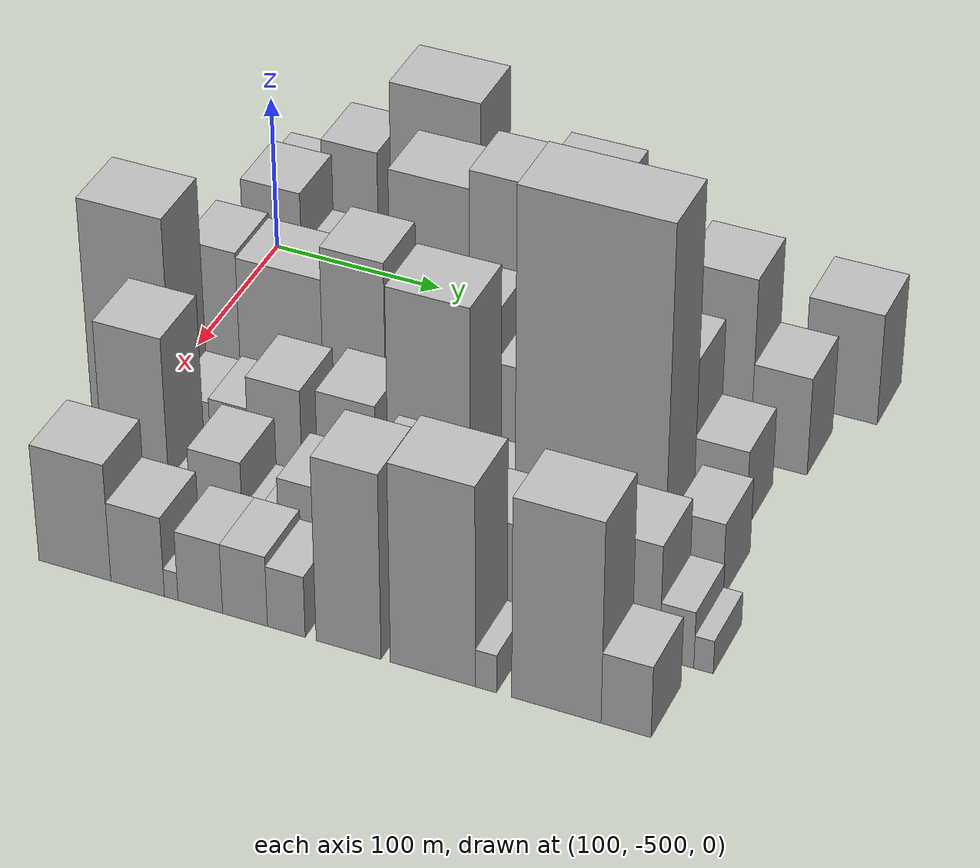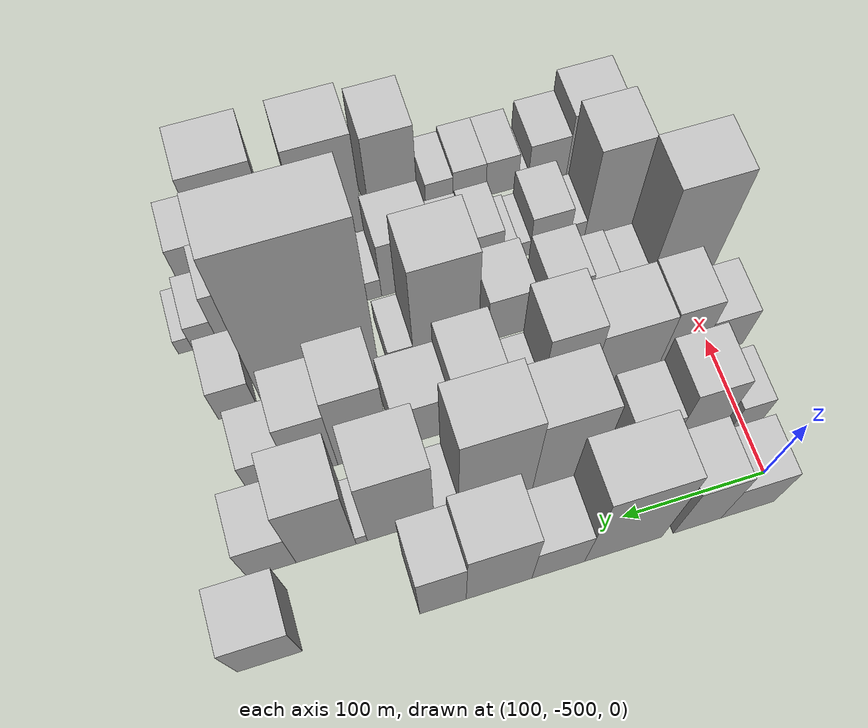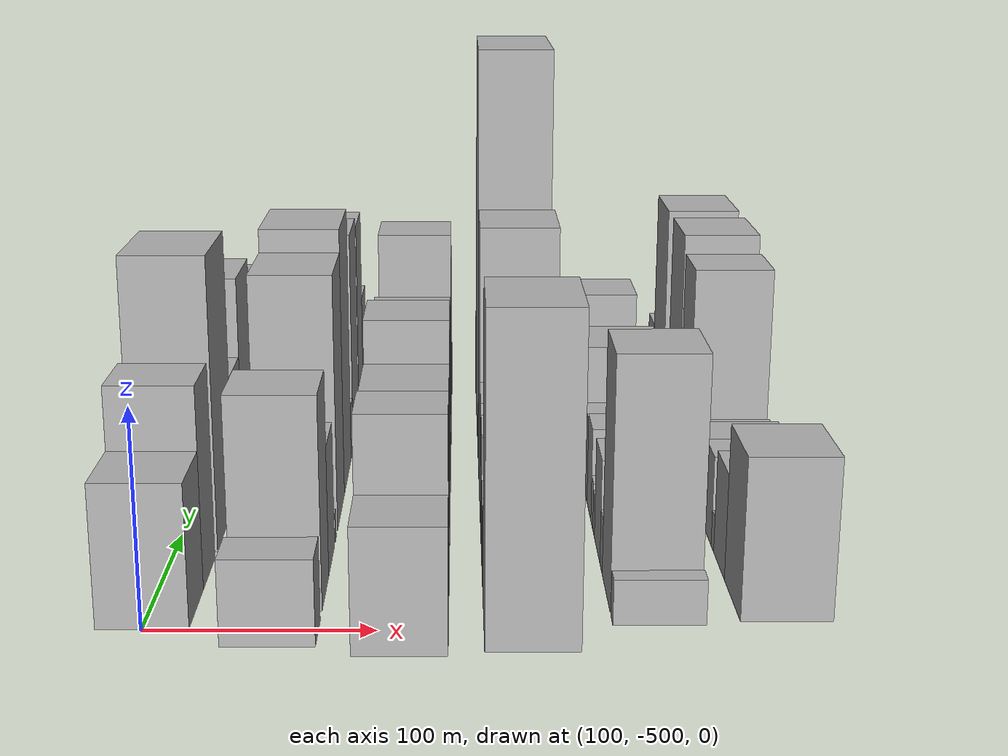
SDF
<sdf version="1.6">
 <world name="default">
  <model name="building_11">
   <static>1</static>
   <pose>100.0000 -479.7981 0 0.000000 0.000000 0.000000</pose>
   <link name="link">
    <pose>0 0 33.00 0 0 0</pose>
    <collision name="collision"><geometry><box><size>40.0000 37.8118 66.0000</size></box></geometry></collision>
    <visual name="visual">
     <cast_shadows>0</cast_shadows>
     <geometry><box><size>40.0000 37.8118 66.0000</size></box></geometry>
     <material>
      <script>
       <uri>model://HANNAS_wall/materials/scripts</uri>
       <uri>model://HANNAS_wall/materials/textures</uri>
       <name>vrc/HANNAS_wall</name>
      </script>
     </material>
    </visual>
   </link>
  </model>
  <model name="building_12">
   <static>1</static>
   <pose>100.0000 -444.1729 0 0.000000 0.000000 0.000000</pose>
   <link name="link">
    <pose>0 0 48.00 0 0 0</pose>
    <collision name="collision"><geometry><box><size>40.0000 33.4387 96.0000</size></box></geometry></collision>
    <visual name="visual">
     <cast_shadows>0</cast_shadows>
     <geometry><box><size>40.0000 33.4387 96.0000</size></box></geometry>
     <material>
      <script>
       <uri>model://HANNAS_wall/materials/scripts</uri>
       <uri>model://HANNAS_wall/materials/textures</uri>
       <name>vrc/HANNAS_wall</name>
      </script>
     </material>
    </visual>
   </link>
  </model>
  <model name="building_13">
   <static>1</static>
   <pose>100.0000 -392.7377 0 0.000000 0.000000 0.000000</pose>
   <link name="link">
    <pose>0 0 72.00 0 0 0</pose>
    <collision name="collision"><geometry><box><size>40.0000 53.4315 144.0000</size></box></geometry></collision>
    <visual name="visual">
     <cast_shadows>0</cast_shadows>
     <geometry><box><size>40.0000 53.4315 144.0000</size></box></geometry>
     <material>
      <script>
       <uri>model://HANNAS_wall/materials/scripts</uri>
       <uri>model://HANNAS_wall/materials/textures</uri>
       <name>vrc/HANNAS_wall</name>
      </script>
     </material>
    </visual>
   </link>
  </model>
  <model name="building_14">
   <static>1</static>
   <pose>100.0000 -348.0701 0 0.000000 0.000000 0.000000</pose>
   <link name="link">
    <pose>0 0 34.50 0 0 0</pose>
    <collision name="collision"><geometry><box><size>40.0000 35.9037 69.0000</size></box></geometry></collision>
    <visual name="visual">
     <cast_shadows>0</cast_shadows>
     <geometry><box><size>40.0000 35.9037 69.0000</size></box></geometry>
     <material>
      <script>
       <uri>model://HANNAS_wall/materials/scripts</uri>
       <uri>model://HANNAS_wall/materials/textures</uri>
       <name>vrc/HANNAS_wall</name>
      </script>
     </material>
    </visual>
   </link>
  </model>
  <model name="building_15">
   <static>1</static>
   <pose>100.0000 -308.0212 0 0.000000 0.000000 0.000000</pose>
   <link name="link">
    <pose>0 0 55.50 0 0 0</pose>
    <collision name="collision"><geometry><box><size>40.0000 44.1941 111.0000</size></box></geometry></collision>
    <visual name="visual">
     <cast_shadows>0</cast_shadows>
     <geometry><box><size>40.0000 44.1941 111.0000</size></box></geometry>
     <material>
      <script>
       <uri>model://HANNAS_wall/materials/scripts</uri>
       <uri>model://HANNAS_wall/materials/textures</uri>
       <name>vrc/HANNAS_wall</name>
      </script>
     </material>
    </visual>
   </link>
  </model>
  <model name="building_16">
   <static>1</static>
   <pose>100.0000 -270.5389 0 0.000000 0.000000 0.000000</pose>
   <link name="link">
    <pose>0 0 46.50 0 0 0</pose>
    <collision name="collision"><geometry><box><size>40.0000 30.7704 93.0000</size></box></geometry></collision>
    <visual name="visual">
     <cast_shadows>0</cast_shadows>
     <geometry><box><size>40.0000 30.7704 93.0000</size></box></geometry>
     <material>
      <script>
       <uri>model://HANNAS_wall/materials/scripts</uri>
       <uri>model://HANNAS_wall/materials/textures</uri>
       <name>vrc/HANNAS_wall</name>
      </script>
     </material>
    </visual>
   </link>
  </model>
  <model name="building_17">
   <static>1</static>
   <pose>100.0000 -157.5000 0 0.000000 0.000000 0.000000</pose>
   <link name="link">
    <pose>0 0 36.00 0 0 0</pose>
    <collision name="collision"><geometry><box><size>40.0000 41.7692 72.0000</size></box></geometry></collision>
    <visual name="visual">
     <cast_shadows>0</cast_shadows>
     <geometry><box><size>40.0000 41.7692 72.0000</size></box></geometry>
     <material>
      <script>
       <uri>model://HANNAS_wall/materials/scripts</uri>
       <uri>model://HANNAS_wall/materials/textures</uri>
       <name>vrc/HANNAS_wall</name>
      </script>
     </material>
    </visual>
   </link>
  </model>
  <model name="building_61">
   <static>1</static>
   <pose>155.0000 -502.9721 0 0.000000 0.000000 0.000000</pose>
   <link name="link">
    <pose>0 0 19.50 0 0 0</pose>
    <collision name="collision"><geometry><box><size>40.0000 23.0800 39.0000</size></box></geometry></collision>
    <visual name="visual">
     <cast_shadows>0</cast_shadows>
     <geometry><box><size>40.0000 23.0800 39.0000</size></box></geometry>
     <material>
      <script>
       <uri>model://HANNAS_wall/materials/scripts</uri>
       <uri>model://HANNAS_wall/materials/textures</uri>
       <name>vrc/HANNAS_wall</name>
      </script>
     </material>
    </visual>
   </link>
  </model>
  <model name="building_62">
   <static>1</static>
   <pose>155.0000 -464.9087 0 0.000000 0.000000 0.000000</pose>
   <link name="link">
    <pose>0 0 49.50 0 0 0</pose>
    <collision name="collision"><geometry><box><size>40.0000 35.0468 99.0000</size></box></geometry></collision>
    <visual name="visual">
     <cast_shadows>0</cast_shadows>
     <geometry><box><size>40.0000 35.0468 99.0000</size></box></geometry>
     <material>
      <script>
       <uri>model://HANNAS_wall/materials/scripts</uri>
       <uri>model://HANNAS_wall/materials/textures</uri>
       <name>vrc/HANNAS_wall</name>
      </script>
     </material>
    </visual>
   </link>
  </model>
  <model name="building_63">
   <static>1</static>
   <pose>155.0000 -431.0790 0 0.000000 0.000000 0.000000</pose>
   <link name="link">
    <pose>0 0 31.50 0 0 0</pose>
    <collision name="collision"><geometry><box><size>40.0000 32.6125 63.0000</size></box></geometry></collision>
    <visual name="visual">
     <cast_shadows>0</cast_shadows>
     <geometry><box><size>40.0000 32.6125 63.0000</size></box></geometry>
     <material>
      <script>
       <uri>model://HANNAS_wall/materials/scripts</uri>
       <uri>model://HANNAS_wall/materials/textures</uri>
       <name>vrc/HANNAS_wall</name>
      </script>
     </material>
    </visual>
   </link>
  </model>
  <model name="building_64">
   <static>1</static>
   <pose>155.0000 -406.5843 0 0.000000 0.000000 0.000000</pose>
   <link name="link">
    <pose>0 0 7.50 0 0 0</pose>
    <collision name="collision"><geometry><box><size>40.0000 6.3770 15.0000</size></box></geometry></collision>
    <visual name="visual">
     <cast_shadows>0</cast_shadows>
     <geometry><box><size>40.0000 6.3770 15.0000</size></box></geometry>
     <material>
      <script>
       <uri>model://HANNAS_wall/materials/scripts</uri>
       <uri>model://HANNAS_wall/materials/textures</uri>
       <name>vrc/HANNAS_wall</name>
      </script>
     </material>
    </visual>
   </link>
  </model>
  <model name="building_65">
   <static>1</static>
   <pose>155.0000 -372.2850 0 0.000000 0.000000 0.000000</pose>
   <link name="link">
    <pose>0 0 64.50 0 0 0</pose>
    <collision name="collision"><geometry><box><size>40.0000 46.2216 129.0000</size></box></geometry></collision>
    <visual name="visual">
     <cast_shadows>0</cast_shadows>
     <geometry><box><size>40.0000 46.2216 129.0000</size></box></geometry>
     <material>
      <script>
       <uri>model://HANNAS_wall/materials/scripts</uri>
       <uri>model://HANNAS_wall/materials/textures</uri>
       <name>vrc/HANNAS_wall</name>
      </script>
     </material>
    </visual>
   </link>
  </model>
  <model name="building_66">
   <static>1</static>
   <pose>155.0000 -323.7393 0 0.000000 0.000000 0.000000</pose>
   <link name="link">
    <pose>0 0 70.50 0 0 0</pose>
    <collision name="collision"><geometry><box><size>40.0000 50.8699 141.0000</size></box></geometry></collision>
    <visual name="visual">
     <cast_shadows>0</cast_shadows>
     <geometry><box><size>40.0000 50.8699 141.0000</size></box></geometry>
     <material>
      <script>
       <uri>model://HANNAS_wall/materials/scripts</uri>
       <uri>model://HANNAS_wall/materials/textures</uri>
       <name>vrc/HANNAS_wall</name>
      </script>
     </material>
    </visual>
   </link>
  </model>
  <model name="building_67">
   <static>1</static>
   <pose>155.0000 -289.9436 0 0.000000 0.000000 0.000000</pose>
   <link name="link">
    <pose>0 0 15.00 0 0 0</pose>
    <collision name="collision"><geometry><box><size>40.0000 16.7214 30.0000</size></box></geometry></collision>
    <visual name="visual">
     <cast_shadows>0</cast_shadows>
     <geometry><box><size>40.0000 16.7214 30.0000</size></box></geometry>
     <material>
      <script>
       <uri>model://HANNAS_wall/materials/scripts</uri>
       <uri>model://HANNAS_wall/materials/textures</uri>
       <name>vrc/HANNAS_wall</name>
      </script>
     </material>
    </visual>
   </link>
  </model>
  <model name="building_68">
   <static>1</static>
   <pose>155.0000 -258.8616 0 0.000000 0.000000 0.000000</pose>
   <link name="link">
    <pose>0 0 61.50 0 0 0</pose>
    <collision name="collision"><geometry><box><size>40.0000 45.4427 123.0000</size></box></geometry></collision>
    <visual name="visual">
     <cast_shadows>0</cast_shadows>
     <geometry><box><size>40.0000 45.4427 123.0000</size></box></geometry>
     <material>
      <script>
       <uri>model://HANNAS_wall/materials/scripts</uri>
       <uri>model://HANNAS_wall/materials/textures</uri>
       <name>vrc/HANNAS_wall</name>
      </script>
     </material>
    </visual>
   </link>
  </model>
  <model name="building_69">
   <static>1</static>
   <pose>155.0000 -232.4272 0 0.000000 0.000000 0.000000</pose>
   <link name="link">
    <pose>0 0 7.50 0 0 0</pose>
    <collision name="collision"><geometry><box><size>40.0000 7.4260 15.0000</size></box></geometry></collision>
    <visual name="visual">
     <cast_shadows>0</cast_shadows>
     <geometry><box><size>40.0000 7.4260 15.0000</size></box></geometry>
     <material>
      <script>
       <uri>model://HANNAS_wall/materials/scripts</uri>
       <uri>model://HANNAS_wall/materials/textures</uri>
       <name>vrc/HANNAS_wall</name>
      </script>
     </material>
    </visual>
   </link>
  </model>
  <model name="building_70">
   <static>1</static>
   <pose>155.0000 -208.6007 0 0.000000 0.000000 0.000000</pose>
   <link name="link">
    <pose>0 0 58.50 0 0 0</pose>
    <collision name="collision"><geometry><box><size>40.0000 40.2268 117.0000</size></box></geometry></collision>
    <visual name="visual">
     <cast_shadows>0</cast_shadows>
     <geometry><box><size>40.0000 40.2268 117.0000</size></box></geometry>
     <material>
      <script>
       <uri>model://HANNAS_wall/materials/scripts</uri>
       <uri>model://HANNAS_wall/materials/textures</uri>
       <name>vrc/HANNAS_wall</name>
      </script>
     </material>
    </visual>
   </link>
  </model>
  <model name="building_71">
   <static>1</static>
   <pose>155.0000 -172.5178 0 0.000000 0.000000 0.000000</pose>
   <link name="link">
    <pose>0 0 31.50 0 0 0</pose>
    <collision name="collision"><geometry><box><size>40.0000 31.9391 63.0000</size></box></geometry></collision>
    <visual name="visual">
     <cast_shadows>0</cast_shadows>
     <geometry><box><size>40.0000 31.9391 63.0000</size></box></geometry>
     <material>
      <script>
       <uri>model://HANNAS_wall/materials/scripts</uri>
       <uri>model://HANNAS_wall/materials/textures</uri>
       <name>vrc/HANNAS_wall</name>
      </script>
     </material>
    </visual>
   </link>
  </model>
  <model name="building_111">
   <static>1</static>
   <pose>210.0000 -506.1158 0 0.000000 0.000000 0.000000</pose>
   <link name="link">
    <pose>0 0 28.50 0 0 0</pose>
    <collision name="collision"><geometry><box><size>40.0000 33.2083 57.0000</size></box></geometry></collision>
    <visual name="visual">
     <cast_shadows>0</cast_shadows>
     <geometry><box><size>40.0000 33.2083 57.0000</size></box></geometry>
     <material>
      <script>
       <uri>model://HANNAS_wall/materials/scripts</uri>
       <uri>model://HANNAS_wall/materials/textures</uri>
       <name>vrc/HANNAS_wall</name>
      </script>
     </material>
    </visual>
   </link>
  </model>
  <model name="building_112">
   <static>1</static>
   <pose>210.0000 -474.1436 0 0.000000 0.000000 0.000000</pose>
   <link name="link">
    <pose>0 0 46.50 0 0 0</pose>
    <collision name="collision"><geometry><box><size>40.0000 30.7360 93.0000</size></box></geometry></collision>
    <visual name="visual">
     <cast_shadows>0</cast_shadows>
     <geometry><box><size>40.0000 30.7360 93.0000</size></box></geometry>
     <material>
      <script>
       <uri>model://HANNAS_wall/materials/scripts</uri>
       <uri>model://HANNAS_wall/materials/textures</uri>
       <name>vrc/HANNAS_wall</name>
      </script>
     </material>
    </visual>
   </link>
  </model>
  <model name="building_113">
   <static>1</static>
   <pose>210.0000 -434.2194 0 0.000000 0.000000 0.000000</pose>
   <link name="link">
    <pose>0 0 45.00 0 0 0</pose>
    <collision name="collision"><geometry><box><size>40.0000 49.1123 90.0000</size></box></geometry></collision>
    <visual name="visual">
     <cast_shadows>0</cast_shadows>
     <geometry><box><size>40.0000 49.1123 90.0000</size></box></geometry>
     <material>
      <script>
       <uri>model://HANNAS_wall/materials/scripts</uri>
       <uri>model://HANNAS_wall/materials/textures</uri>
       <name>vrc/HANNAS_wall</name>
      </script>
     </material>
    </visual>
   </link>
  </model>
  <model name="building_114">
   <static>1</static>
   <pose>210.0000 -391.4846 0 0.000000 0.000000 0.000000</pose>
   <link name="link">
    <pose>0 0 55.50 0 0 0</pose>
    <collision name="collision"><geometry><box><size>40.0000 36.3574 111.0000</size></box></geometry></collision>
    <visual name="visual">
     <cast_shadows>0</cast_shadows>
     <geometry><box><size>40.0000 36.3574 111.0000</size></box></geometry>
     <material>
      <script>
       <uri>model://HANNAS_wall/materials/scripts</uri>
       <uri>model://HANNAS_wall/materials/textures</uri>
       <name>vrc/HANNAS_wall</name>
      </script>
     </material>
    </visual>
   </link>
  </model>
  <model name="building_115">
   <static>1</static>
   <pose>210.0000 -364.0473 0 0.000000 0.000000 0.000000</pose>
   <link name="link">
    <pose>0 0 18.00 0 0 0</pose>
    <collision name="collision"><geometry><box><size>40.0000 18.5171 36.0000</size></box></geometry></collision>
    <visual name="visual">
     <cast_shadows>0</cast_shadows>
     <geometry><box><size>40.0000 18.5171 36.0000</size></box></geometry>
     <material>
      <script>
       <uri>model://HANNAS_wall/materials/scripts</uri>
       <uri>model://HANNAS_wall/materials/textures</uri>
       <name>vrc/HANNAS_wall</name>
      </script>
     </material>
    </visual>
   </link>
  </model>
  <model name="building_116">
   <static>1</static>
   <pose>210.0000 -328.5736 0 0.000000 0.000000 0.000000</pose>
   <link name="link">
    <pose>0 0 48.00 0 0 0</pose>
    <collision name="collision"><geometry><box><size>40.0000 36.4304 96.0000</size></box></geometry></collision>
    <visual name="visual">
     <cast_shadows>0</cast_shadows>
     <geometry><box><size>40.0000 36.4304 96.0000</size></box></geometry>
     <material>
      <script>
       <uri>model://HANNAS_wall/materials/scripts</uri>
       <uri>model://HANNAS_wall/materials/textures</uri>
       <name>vrc/HANNAS_wall</name>
      </script>
     </material>
    </visual>
   </link>
  </model>
  <model name="building_117">
   <static>1</static>
   <pose>210.0000 -290.9938 0 0.000000 0.000000 0.000000</pose>
   <link name="link">
    <pose>0 0 33.00 0 0 0</pose>
    <collision name="collision"><geometry><box><size>40.0000 38.7291 66.0000</size></box></geometry></collision>
    <visual name="visual">
     <cast_shadows>0</cast_shadows>
     <geometry><box><size>40.0000 38.7291 66.0000</size></box></geometry>
     <material>
      <script>
       <uri>model://HANNAS_wall/materials/scripts</uri>
       <uri>model://HANNAS_wall/materials/textures</uri>
       <name>vrc/HANNAS_wall</name>
      </script>
     </material>
    </visual>
   </link>
  </model>
  <model name="building_118">
   <static>1</static>
   <pose>210.0000 -249.4739 0 0.000000 0.000000 0.000000</pose>
   <link name="link">
    <pose>0 0 60.00 0 0 0</pose>
    <collision name="collision"><geometry><box><size>40.0000 36.3107 120.0000</size></box></geometry></collision>
    <visual name="visual">
     <cast_shadows>0</cast_shadows>
     <geometry><box><size>40.0000 36.3107 120.0000</size></box></geometry>
     <material>
      <script>
       <uri>model://HANNAS_wall/materials/scripts</uri>
       <uri>model://HANNAS_wall/materials/textures</uri>
       <name>vrc/HANNAS_wall</name>
      </script>
     </material>
    </visual>
   </link>
  </model>
  <model name="building_119">
   <static>1</static>
   <pose>210.0000 -215.6604 0 0.000000 0.000000 0.000000</pose>
   <link name="link">
    <pose>0 0 49.50 0 0 0</pose>
    <collision name="collision"><geometry><box><size>40.0000 31.3165 99.0000</size></box></geometry></collision>
    <visual name="visual">
     <cast_shadows>0</cast_shadows>
     <geometry><box><size>40.0000 31.3165 99.0000</size></box></geometry>
     <material>
      <script>
       <uri>model://HANNAS_wall/materials/scripts</uri>
       <uri>model://HANNAS_wall/materials/textures</uri>
       <name>vrc/HANNAS_wall</name>
      </script>
     </material>
    </visual>
   </link>
  </model>
  <model name="building_120">
   <static>1</static>
   <pose>210.0000 -185.1532 0 0.000000 0.000000 0.000000</pose>
   <link name="link">
    <pose>0 0 25.50 0 0 0</pose>
    <collision name="collision"><geometry><box><size>40.0000 29.6978 51.0000</size></box></geometry></collision>
    <visual name="visual">
     <cast_shadows>0</cast_shadows>
     <geometry><box><size>40.0000 29.6978 51.0000</size></box></geometry>
     <material>
      <script>
       <uri>model://HANNAS_wall/materials/scripts</uri>
       <uri>model://HANNAS_wall/materials/textures</uri>
       <name>vrc/HANNAS_wall</name>
      </script>
     </material>
    </visual>
   </link>
  </model>
  <model name="building_162">
   <static>1</static>
   <pose>265.0000 -495.3887 0 0.000000 0.000000 0.000000</pose>
   <link name="link">
    <pose>0 0 73.50 0 0 0</pose>
    <collision name="collision"><geometry><box><size>40.0000 48.5079 147.0000</size></box></geometry></collision>
    <visual name="visual">
     <cast_shadows>0</cast_shadows>
     <geometry><box><size>40.0000 48.5079 147.0000</size></box></geometry>
     <material>
      <script>
       <uri>model://HANNAS_wall/materials/scripts</uri>
       <uri>model://HANNAS_wall/materials/textures</uri>
       <name>vrc/HANNAS_wall</name>
      </script>
     </material>
    </visual>
   </link>
  </model>
  <model name="building_163">
   <static>1</static>
   <pose>265.0000 -460.3418 0 0.000000 0.000000 0.000000</pose>
   <link name="link">
    <pose>0 0 18.00 0 0 0</pose>
    <collision name="collision"><geometry><box><size>40.0000 21.5859 36.0000</size></box></geometry></collision>
    <visual name="visual">
     <cast_shadows>0</cast_shadows>
     <geometry><box><size>40.0000 21.5859 36.0000</size></box></geometry>
     <material>
      <script>
       <uri>model://HANNAS_wall/materials/scripts</uri>
       <uri>model://HANNAS_wall/materials/textures</uri>
       <name>vrc/HANNAS_wall</name>
      </script>
     </material>
    </visual>
   </link>
  </model>
  <model name="building_164">
   <static>1</static>
   <pose>265.0000 -438.4211 0 0.000000 0.000000 0.000000</pose>
   <link name="link">
    <pose>0 0 19.50 0 0 0</pose>
    <collision name="collision"><geometry><box><size>40.0000 22.2556 39.0000</size></box></geometry></collision>
    <visual name="visual">
     <cast_shadows>0</cast_shadows>
     <geometry><box><size>40.0000 22.2556 39.0000</size></box></geometry>
     <material>
      <script>
       <uri>model://HANNAS_wall/materials/scripts</uri>
       <uri>model://HANNAS_wall/materials/textures</uri>
       <name>vrc/HANNAS_wall</name>
      </script>
     </material>
    </visual>
   </link>
  </model>
  <model name="building_165">
   <static>1</static>
   <pose>265.0000 -411.8316 0 0.000000 0.000000 0.000000</pose>
   <link name="link">
    <pose>0 0 30.00 0 0 0</pose>
    <collision name="collision"><geometry><box><size>40.0000 30.9233 60.0000</size></box></geometry></collision>
    <visual name="visual">
     <cast_shadows>0</cast_shadows>
     <geometry><box><size>40.0000 30.9233 60.0000</size></box></geometry>
     <material>
      <script>
       <uri>model://HANNAS_wall/materials/scripts</uri>
       <uri>model://HANNAS_wall/materials/textures</uri>
       <name>vrc/HANNAS_wall</name>
      </script>
     </material>
    </visual>
   </link>
  </model>
  <model name="building_166">
   <static>1</static>
   <pose>265.0000 -370.6947 0 0.000000 0.000000 0.000000</pose>
   <link name="link">
    <pose>0 0 31.50 0 0 0</pose>
    <collision name="collision"><geometry><box><size>40.0000 33.3504 63.0000</size></box></geometry></collision>
    <visual name="visual">
     <cast_shadows>0</cast_shadows>
     <geometry><box><size>40.0000 33.3504 63.0000</size></box></geometry>
     <material>
      <script>
       <uri>model://HANNAS_wall/materials/scripts</uri>
       <uri>model://HANNAS_wall/materials/textures</uri>
       <name>vrc/HANNAS_wall</name>
      </script>
     </material>
    </visual>
   </link>
  </model>
  <model name="building_167">
   <static>1</static>
   <pose>265.0000 -323.8710 0 0.000000 0.000000 0.000000</pose>
   <link name="link">
    <pose>0 0 70.50 0 0 0</pose>
    <collision name="collision"><geometry><box><size>40.0000 46.2971 141.0000</size></box></geometry></collision>
    <visual name="visual">
     <cast_shadows>0</cast_shadows>
     <geometry><box><size>40.0000 46.2971 141.0000</size></box></geometry>
     <material>
      <script>
       <uri>model://HANNAS_wall/materials/scripts</uri>
       <uri>model://HANNAS_wall/materials/textures</uri>
       <name>vrc/HANNAS_wall</name>
      </script>
     </material>
    </visual>
   </link>
  </model>
  <model name="building_168">
   <static>1</static>
   <pose>265.0000 -291.8810 0 0.000000 0.000000 0.000000</pose>
   <link name="link">
    <pose>0 0 15.00 0 0 0</pose>
    <collision name="collision"><geometry><box><size>40.0000 17.6830 30.0000</size></box></geometry></collision>
    <visual name="visual">
     <cast_shadows>0</cast_shadows>
     <geometry><box><size>40.0000 17.6830 30.0000</size></box></geometry>
     <material>
      <script>
       <uri>model://HANNAS_wall/materials/scripts</uri>
       <uri>model://HANNAS_wall/materials/textures</uri>
       <name>vrc/HANNAS_wall</name>
      </script>
     </material>
    </visual>
   </link>
  </model>
  <model name="building_169">
   <static>1</static>
   <pose>265.0000 -235.0269 0 0.000000 0.000000 0.000000</pose>
   <link name="link">
    <pose>0 0 111.00 0 0 0</pose>
    <collision name="collision"><geometry><box><size>40.0000 82.0252 222.0000</size></box></geometry></collision>
    <visual name="visual">
     <cast_shadows>0</cast_shadows>
     <geometry><box><size>40.0000 82.0252 222.0000</size></box></geometry>
     <material>
      <script>
       <uri>model://HANNAS_wall/materials/scripts</uri>
       <uri>model://HANNAS_wall/materials/textures</uri>
       <name>vrc/HANNAS_wall</name>
      </script>
     </material>
    </visual>
   </link>
  </model>
  <model name="building_170">
   <static>1</static>
   <pose>265.0000 -176.2458 0 0.000000 0.000000 0.000000</pose>
   <link name="link">
    <pose>0 0 24.00 0 0 0</pose>
    <collision name="collision"><geometry><box><size>40.0000 27.5372 48.0000</size></box></geometry></collision>
    <visual name="visual">
     <cast_shadows>0</cast_shadows>
     <geometry><box><size>40.0000 27.5372 48.0000</size></box></geometry>
     <material>
      <script>
       <uri>model://HANNAS_wall/materials/scripts</uri>
       <uri>model://HANNAS_wall/materials/textures</uri>
       <name>vrc/HANNAS_wall</name>
      </script>
     </material>
    </visual>
   </link>
  </model>
  <model name="building_216">
   <static>1</static>
   <pose>320.0000 -491.0391 0 0.000000 0.000000 0.000000</pose>
   <link name="link">
    <pose>0 0 10.50 0 0 0</pose>
    <collision name="collision"><geometry><box><size>40.0000 9.6906 21.0000</size></box></geometry></collision>
    <visual name="visual">
     <cast_shadows>0</cast_shadows>
     <geometry><box><size>40.0000 9.6906 21.0000</size></box></geometry>
     <material>
      <script>
       <uri>model://HANNAS_wall/materials/scripts</uri>
       <uri>model://HANNAS_wall/materials/textures</uri>
       <name>vrc/HANNAS_wall</name>
      </script>
     </material>
    </visual>
   </link>
  </model>
  <model name="building_217">
   <static>1</static>
   <pose>320.0000 -464.1916 0 0.000000 0.000000 0.000000</pose>
   <link name="link">
    <pose>0 0 58.50 0 0 0</pose>
    <collision name="collision"><geometry><box><size>40.0000 38.0043 117.0000</size></box></geometry></collision>
    <visual name="visual">
     <cast_shadows>0</cast_shadows>
     <geometry><box><size>40.0000 38.0043 117.0000</size></box></geometry>
     <material>
      <script>
       <uri>model://HANNAS_wall/materials/scripts</uri>
       <uri>model://HANNAS_wall/materials/textures</uri>
       <name>vrc/HANNAS_wall</name>
      </script>
     </material>
    </visual>
   </link>
  </model>
  <model name="building_218">
   <static>1</static>
   <pose>320.0000 -439.4011 0 0.000000 0.000000 0.000000</pose>
   <link name="link">
    <pose>0 0 13.50 0 0 0</pose>
    <collision name="collision"><geometry><box><size>40.0000 11.5768 27.0000</size></box></geometry></collision>
    <visual name="visual">
     <cast_shadows>0</cast_shadows>
     <geometry><box><size>40.0000 11.5768 27.0000</size></box></geometry>
     <material>
      <script>
       <uri>model://HANNAS_wall/materials/scripts</uri>
       <uri>model://HANNAS_wall/materials/textures</uri>
       <name>vrc/HANNAS_wall</name>
      </script>
     </material>
    </visual>
   </link>
  </model>
  <model name="building_219">
   <static>1</static>
   <pose>320.0000 -418.6758 0 0.000000 0.000000 0.000000</pose>
   <link name="link">
    <pose>0 0 25.50 0 0 0</pose>
    <collision name="collision"><geometry><box><size>40.0000 29.8738 51.0000</size></box></geometry></collision>
    <visual name="visual">
     <cast_shadows>0</cast_shadows>
     <geometry><box><size>40.0000 29.8738 51.0000</size></box></geometry>
     <material>
      <script>
       <uri>model://HANNAS_wall/materials/scripts</uri>
       <uri>model://HANNAS_wall/materials/textures</uri>
       <name>vrc/HANNAS_wall</name>
      </script>
     </material>
    </visual>
   </link>
  </model>
  <model name="building_220">
   <static>1</static>
   <pose>320.0000 -399.0891 0 0.000000 0.000000 0.000000</pose>
   <link name="link">
    <pose>0 0 10.50 0 0 0</pose>
    <collision name="collision"><geometry><box><size>40.0000 9.2995 21.0000</size></box></geometry></collision>
    <visual name="visual">
     <cast_shadows>0</cast_shadows>
     <geometry><box><size>40.0000 9.2995 21.0000</size></box></geometry>
     <material>
      <script>
       <uri>model://HANNAS_wall/materials/scripts</uri>
       <uri>model://HANNAS_wall/materials/textures</uri>
       <name>vrc/HANNAS_wall</name>
      </script>
     </material>
    </visual>
   </link>
  </model>
  <model name="building_221">
   <static>1</static>
   <pose>320.0000 -388.8638 0 0.000000 0.000000 0.000000</pose>
   <link name="link">
    <pose>0 0 12.00 0 0 0</pose>
    <collision name="collision"><geometry><box><size>40.0000 11.1513 24.0000</size></box></geometry></collision>
    <visual name="visual">
     <cast_shadows>0</cast_shadows>
     <geometry><box><size>40.0000 11.1513 24.0000</size></box></geometry>
     <material>
      <script>
       <uri>model://HANNAS_wall/materials/scripts</uri>
       <uri>model://HANNAS_wall/materials/textures</uri>
       <name>vrc/HANNAS_wall</name>
      </script>
     </material>
    </visual>
   </link>
  </model>
  <model name="building_222">
   <static>1</static>
   <pose>320.0000 -371.2518 0 0.000000 0.000000 0.000000</pose>
   <link name="link">
    <pose>0 0 24.00 0 0 0</pose>
    <collision name="collision"><geometry><box><size>40.0000 24.0726 48.0000</size></box></geometry></collision>
    <visual name="visual">
     <cast_shadows>0</cast_shadows>
     <geometry><box><size>40.0000 24.0726 48.0000</size></box></geometry>
     <material>
      <script>
       <uri>model://HANNAS_wall/materials/scripts</uri>
       <uri>model://HANNAS_wall/materials/textures</uri>
       <name>vrc/HANNAS_wall</name>
      </script>
     </material>
    </visual>
   </link>
  </model>
  <model name="building_223">
   <static>1</static>
   <pose>320.0000 -346.2092 0 0.000000 0.000000 0.000000</pose>
   <link name="link">
    <pose>0 0 22.50 0 0 0</pose>
    <collision name="collision"><geometry><box><size>40.0000 26.0126 45.0000</size></box></geometry></collision>
    <visual name="visual">
     <cast_shadows>0</cast_shadows>
     <geometry><box><size>40.0000 26.0126 45.0000</size></box></geometry>
     <material>
      <script>
       <uri>model://HANNAS_wall/materials/scripts</uri>
       <uri>model://HANNAS_wall/materials/textures</uri>
       <name>vrc/HANNAS_wall</name>
      </script>
     </material>
    </visual>
   </link>
  </model>
  <model name="building_224">
   <static>1</static>
   <pose>320.0000 -313.2161 0 0.000000 0.000000 0.000000</pose>
   <link name="link">
    <pose>0 0 37.50 0 0 0</pose>
    <collision name="collision"><geometry><box><size>40.0000 39.9738 75.0000</size></box></geometry></collision>
    <visual name="visual">
     <cast_shadows>0</cast_shadows>
     <geometry><box><size>40.0000 39.9738 75.0000</size></box></geometry>
     <material>
      <script>
       <uri>model://HANNAS_wall/materials/scripts</uri>
       <uri>model://HANNAS_wall/materials/textures</uri>
       <name>vrc/HANNAS_wall</name>
      </script>
     </material>
    </visual>
   </link>
  </model>
  <model name="building_225">
   <static>1</static>
   <pose>320.0000 -286.9544 0 0.000000 0.000000 0.000000</pose>
   <link name="link">
    <pose>0 0 13.50 0 0 0</pose>
    <collision name="collision"><geometry><box><size>40.0000 12.5496 27.0000</size></box></geometry></collision>
    <visual name="visual">
     <cast_shadows>0</cast_shadows>
     <geometry><box><size>40.0000 12.5496 27.0000</size></box></geometry>
     <material>
      <script>
       <uri>model://HANNAS_wall/materials/scripts</uri>
       <uri>model://HANNAS_wall/materials/textures</uri>
       <name>vrc/HANNAS_wall</name>
      </script>
     </material>
    </visual>
   </link>
  </model>
  <model name="building_226">
   <static>1</static>
   <pose>320.0000 -265.5723 0 0.000000 0.000000 0.000000</pose>
   <link name="link">
    <pose>0 0 30.00 0 0 0</pose>
    <collision name="collision"><geometry><box><size>40.0000 30.2146 60.0000</size></box></geometry></collision>
    <visual name="visual">
     <cast_shadows>0</cast_shadows>
     <geometry><box><size>40.0000 30.2146 60.0000</size></box></geometry>
     <material>
      <script>
       <uri>model://HANNAS_wall/materials/scripts</uri>
       <uri>model://HANNAS_wall/materials/textures</uri>
       <name>vrc/HANNAS_wall</name>
      </script>
     </material>
    </visual>
   </link>
  </model>
  <model name="building_227">
   <static>1</static>
   <pose>320.0000 -227.1641 0 0.000000 0.000000 0.000000</pose>
   <link name="link">
    <pose>0 0 24.00 0 0 0</pose>
    <collision name="collision"><geometry><box><size>40.0000 26.6017 48.0000</size></box></geometry></collision>
    <visual name="visual">
     <cast_shadows>0</cast_shadows>
     <geometry><box><size>40.0000 26.6017 48.0000</size></box></geometry>
     <material>
      <script>
       <uri>model://HANNAS_wall/materials/scripts</uri>
       <uri>model://HANNAS_wall/materials/textures</uri>
       <name>vrc/HANNAS_wall</name>
      </script>
     </material>
    </visual>
   </link>
  </model>
  <model name="building_228">
   <static>1</static>
   <pose>320.0000 -194.4834 0 0.000000 0.000000 0.000000</pose>
   <link name="link">
    <pose>0 0 36.00 0 0 0</pose>
    <collision name="collision"><geometry><box><size>40.0000 38.7596 72.0000</size></box></geometry></collision>
    <visual name="visual">
     <cast_shadows>0</cast_shadows>
     <geometry><box><size>40.0000 38.7596 72.0000</size></box></geometry>
     <material>
      <script>
       <uri>model://HANNAS_wall/materials/scripts</uri>
       <uri>model://HANNAS_wall/materials/textures</uri>
       <name>vrc/HANNAS_wall</name>
      </script>
     </material>
    </visual>
   </link>
  </model>
  <model name="building_229">
   <static>1</static>
   <pose>320.0000 -166.0504 0 0.000000 0.000000 0.000000</pose>
   <link name="link">
    <pose>0 0 18.00 0 0 0</pose>
    <collision name="collision"><geometry><box><size>40.0000 18.1063 36.0000</size></box></geometry></collision>
    <visual name="visual">
     <cast_shadows>0</cast_shadows>
     <geometry><box><size>40.0000 18.1063 36.0000</size></box></geometry>
     <material>
      <script>
       <uri>model://HANNAS_wall/materials/scripts</uri>
       <uri>model://HANNAS_wall/materials/textures</uri>
       <name>vrc/HANNAS_wall</name>
      </script>
     </material>
    </visual>
   </link>
  </model>
  <model name="building_230">
   <static>1</static>
   <pose>320.0000 -151.8641 0 0.000000 0.000000 0.000000</pose>
   <link name="link">
    <pose>0 0 10.50 0 0 0</pose>
    <collision name="collision"><geometry><box><size>40.0000 10.2663 21.0000</size></box></geometry></collision>
    <visual name="visual">
     <cast_shadows>0</cast_shadows>
     <geometry><box><size>40.0000 10.2663 21.0000</size></box></geometry>
     <material>
      <script>
       <uri>model://HANNAS_wall/materials/scripts</uri>
       <uri>model://HANNAS_wall/materials/textures</uri>
       <name>vrc/HANNAS_wall</name>
      </script>
     </material>
    </visual>
   </link>
  </model>
  <model name="building_273">
   <static>1</static>
   <pose>375.0000 -471.9304 0 0.000000 0.000000 0.000000</pose>
   <link name="link">
    <pose>0 0 37.50 0 0 0</pose>
    <collision name="collision"><geometry><box><size>40.0000 41.2348 75.0000</size></box></geometry></collision>
    <visual name="visual">
     <cast_shadows>0</cast_shadows>
     <geometry><box><size>40.0000 41.2348 75.0000</size></box></geometry>
     <material>
      <script>
       <uri>model://HANNAS_wall/materials/scripts</uri>
       <uri>model://HANNAS_wall/materials/textures</uri>
       <name>vrc/HANNAS_wall</name>
      </script>
     </material>
    </visual>
   </link>
  </model>
  <model name="building_274">
   <static>1</static>
   <pose>375.0000 -436.1574 0 0.000000 0.000000 0.000000</pose>
   <link name="link">
    <pose>0 0 25.50 0 0 0</pose>
    <collision name="collision"><geometry><box><size>40.0000 30.3111 51.0000</size></box></geometry></collision>
    <visual name="visual">
     <cast_shadows>0</cast_shadows>
     <geometry><box><size>40.0000 30.3111 51.0000</size></box></geometry>
     <material>
      <script>
       <uri>model://HANNAS_wall/materials/scripts</uri>
       <uri>model://HANNAS_wall/materials/textures</uri>
       <name>vrc/HANNAS_wall</name>
      </script>
     </material>
    </visual>
   </link>
  </model>
  <model name="building_275">
   <static>1</static>
   <pose>375.0000 -417.1740 0 0.000000 0.000000 0.000000</pose>
   <link name="link">
    <pose>0 0 9.00 0 0 0</pose>
    <collision name="collision"><geometry><box><size>40.0000 7.6557 18.0000</size></box></geometry></collision>
    <visual name="visual">
     <cast_shadows>0</cast_shadows>
     <geometry><box><size>40.0000 7.6557 18.0000</size></box></geometry>
     <material>
      <script>
       <uri>model://HANNAS_wall/materials/scripts</uri>
       <uri>model://HANNAS_wall/materials/textures</uri>
       <name>vrc/HANNAS_wall</name>
      </script>
     </material>
    </visual>
   </link>
  </model>
  <model name="building_276">
   <static>1</static>
   <pose>375.0000 -400.8548 0 0.000000 0.000000 0.000000</pose>
   <link name="link">
    <pose>0 0 22.50 0 0 0</pose>
    <collision name="collision"><geometry><box><size>40.0000 24.9828 45.0000</size></box></geometry></collision>
    <visual name="visual">
     <cast_shadows>0</cast_shadows>
     <geometry><box><size>40.0000 24.9828 45.0000</size></box></geometry>
     <material>
      <script>
       <uri>model://HANNAS_wall/materials/scripts</uri>
       <uri>model://HANNAS_wall/materials/textures</uri>
       <name>vrc/HANNAS_wall</name>
      </script>
     </material>
    </visual>
   </link>
  </model>
  <model name="building_277">
   <static>1</static>
   <pose>375.0000 -375.8845 0 0.000000 0.000000 0.000000</pose>
   <link name="link">
    <pose>0 0 22.50 0 0 0</pose>
    <collision name="collision"><geometry><box><size>40.0000 24.9577 45.0000</size></box></geometry></collision>
    <visual name="visual">
     <cast_shadows>0</cast_shadows>
     <geometry><box><size>40.0000 24.9577 45.0000</size></box></geometry>
     <material>
      <script>
       <uri>model://HANNAS_wall/materials/scripts</uri>
       <uri>model://HANNAS_wall/materials/textures</uri>
       <name>vrc/HANNAS_wall</name>
      </script>
     </material>
    </visual>
   </link>
  </model>
  <model name="building_278">
   <static>1</static>
   <pose>375.0000 -352.9877 0 0.000000 0.000000 0.000000</pose>
   <link name="link">
    <pose>0 0 19.50 0 0 0</pose>
    <collision name="collision"><geometry><box><size>40.0000 20.8358 39.0000</size></box></geometry></collision>
    <visual name="visual">
     <cast_shadows>0</cast_shadows>
     <geometry><box><size>40.0000 20.8358 39.0000</size></box></geometry>
     <material>
      <script>
       <uri>model://HANNAS_wall/materials/scripts</uri>
       <uri>model://HANNAS_wall/materials/textures</uri>
       <name>vrc/HANNAS_wall</name>
      </script>
     </material>
    </visual>
   </link>
  </model>
  <model name="building_279">
   <static>1</static>
   <pose>375.0000 -318.8339 0 0.000000 0.000000 0.000000</pose>
   <link name="link">
    <pose>0 0 58.50 0 0 0</pose>
    <collision name="collision"><geometry><box><size>40.0000 35.4718 117.0000</size></box></geometry></collision>
    <visual name="visual">
     <cast_shadows>0</cast_shadows>
     <geometry><box><size>40.0000 35.4718 117.0000</size></box></geometry>
     <material>
      <script>
       <uri>model://HANNAS_wall/materials/scripts</uri>
       <uri>model://HANNAS_wall/materials/textures</uri>
       <name>vrc/HANNAS_wall</name>
      </script>
     </material>
    </visual>
   </link>
  </model>
  <model name="building_280">
   <static>1</static>
   <pose>375.0000 -273.2894 0 0.000000 0.000000 0.000000</pose>
   <link name="link">
    <pose>0 0 63.00 0 0 0</pose>
    <collision name="collision"><geometry><box><size>40.0000 45.6172 126.0000</size></box></geometry></collision>
    <visual name="visual">
     <cast_shadows>0</cast_shadows>
     <geometry><box><size>40.0000 45.6172 126.0000</size></box></geometry>
     <material>
      <script>
       <uri>model://HANNAS_wall/materials/scripts</uri>
       <uri>model://HANNAS_wall/materials/textures</uri>
       <name>vrc/HANNAS_wall</name>
      </script>
     </material>
    </visual>
   </link>
  </model>
  <model name="building_281">
   <static>1</static>
   <pose>375.0000 -244.7953 0 0.000000 0.000000 0.000000</pose>
   <link name="link">
    <pose>0 0 12.00 0 0 0</pose>
    <collision name="collision"><geometry><box><size>40.0000 11.3711 24.0000</size></box></geometry></collision>
    <visual name="visual">
     <cast_shadows>0</cast_shadows>
     <geometry><box><size>40.0000 11.3711 24.0000</size></box></geometry>
     <material>
      <script>
       <uri>model://HANNAS_wall/materials/scripts</uri>
       <uri>model://HANNAS_wall/materials/textures</uri>
       <name>vrc/HANNAS_wall</name>
      </script>
     </material>
    </visual>
   </link>
  </model>
  <model name="building_282">
   <static>1</static>
   <pose>375.0000 -207.5879 0 0.000000 0.000000 0.000000</pose>
   <link name="link">
    <pose>0 0 63.00 0 0 0</pose>
    <collision name="collision"><geometry><box><size>40.0000 47.0437 126.0000</size></box></geometry></collision>
    <visual name="visual">
     <cast_shadows>0</cast_shadows>
     <geometry><box><size>40.0000 47.0437 126.0000</size></box></geometry>
     <material>
      <script>
       <uri>model://HANNAS_wall/materials/scripts</uri>
       <uri>model://HANNAS_wall/materials/textures</uri>
       <name>vrc/HANNAS_wall</name>
      </script>
     </material>
    </visual>
   </link>
  </model>
  <model name="building_283">
   <static>1</static>
   <pose>375.0000 -171.0425 0 0.000000 0.000000 0.000000</pose>
   <link name="link">
    <pose>0 0 22.50 0 0 0</pose>
    <collision name="collision"><geometry><box><size>40.0000 26.0470 45.0000</size></box></geometry></collision>
    <visual name="visual">
     <cast_shadows>0</cast_shadows>
     <geometry><box><size>40.0000 26.0470 45.0000</size></box></geometry>
     <material>
      <script>
       <uri>model://HANNAS_wall/materials/scripts</uri>
       <uri>model://HANNAS_wall/materials/textures</uri>
       <name>vrc/HANNAS_wall</name>
      </script>
     </material>
    </visual>
   </link>
  </model>
 </world>
</sdf>
